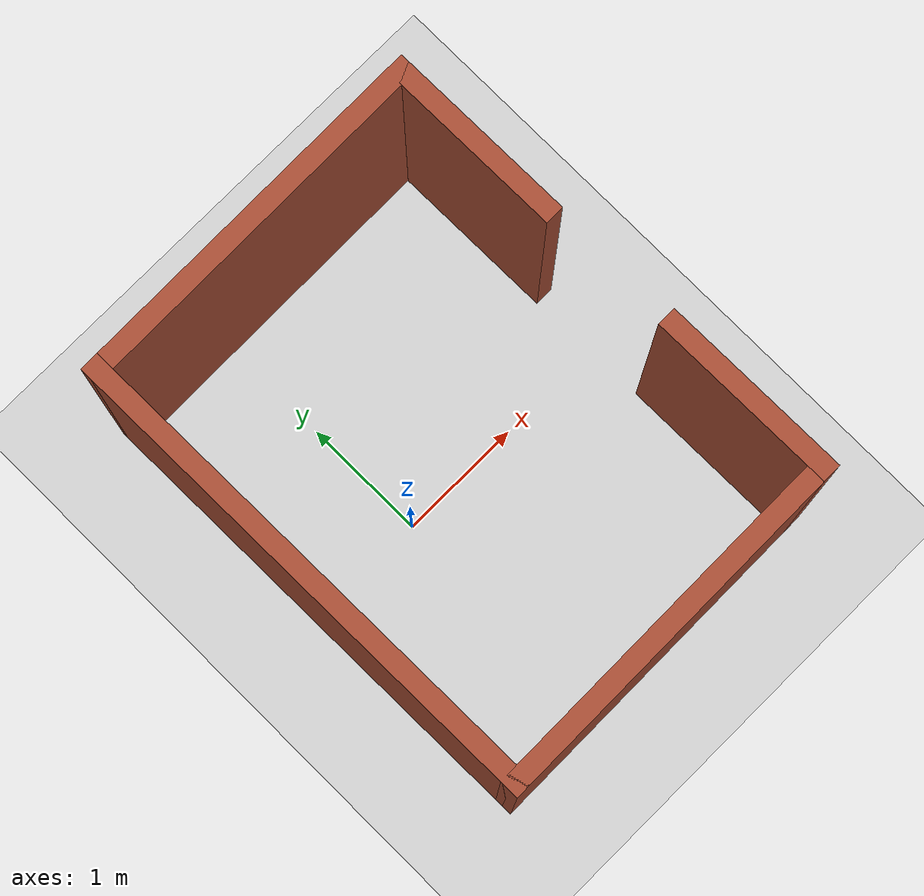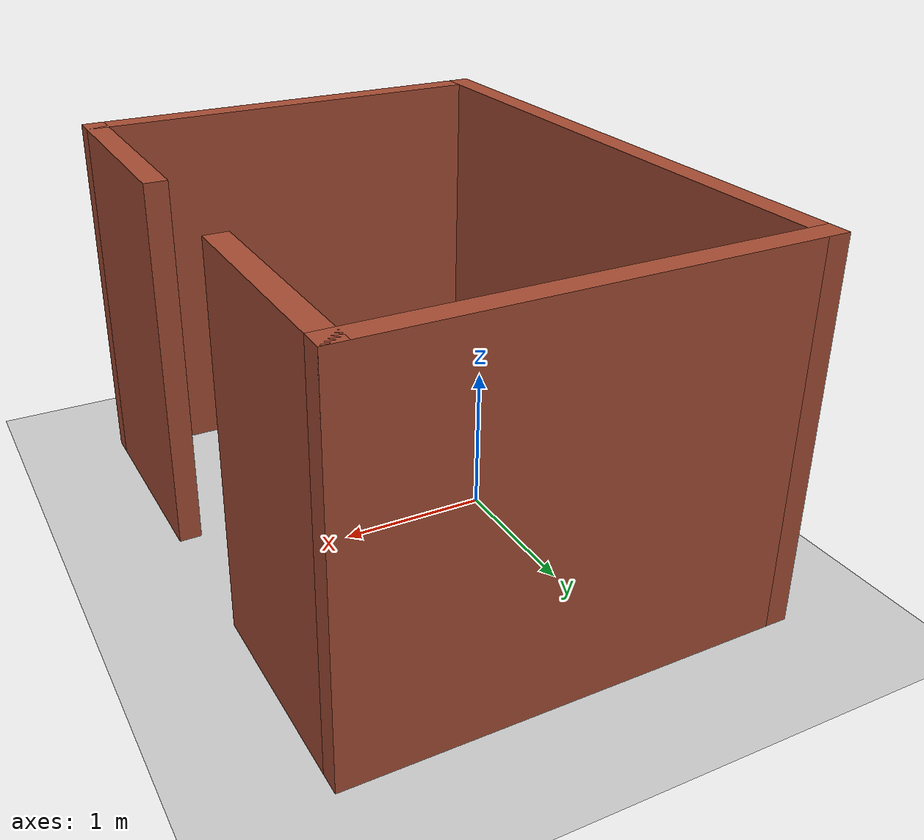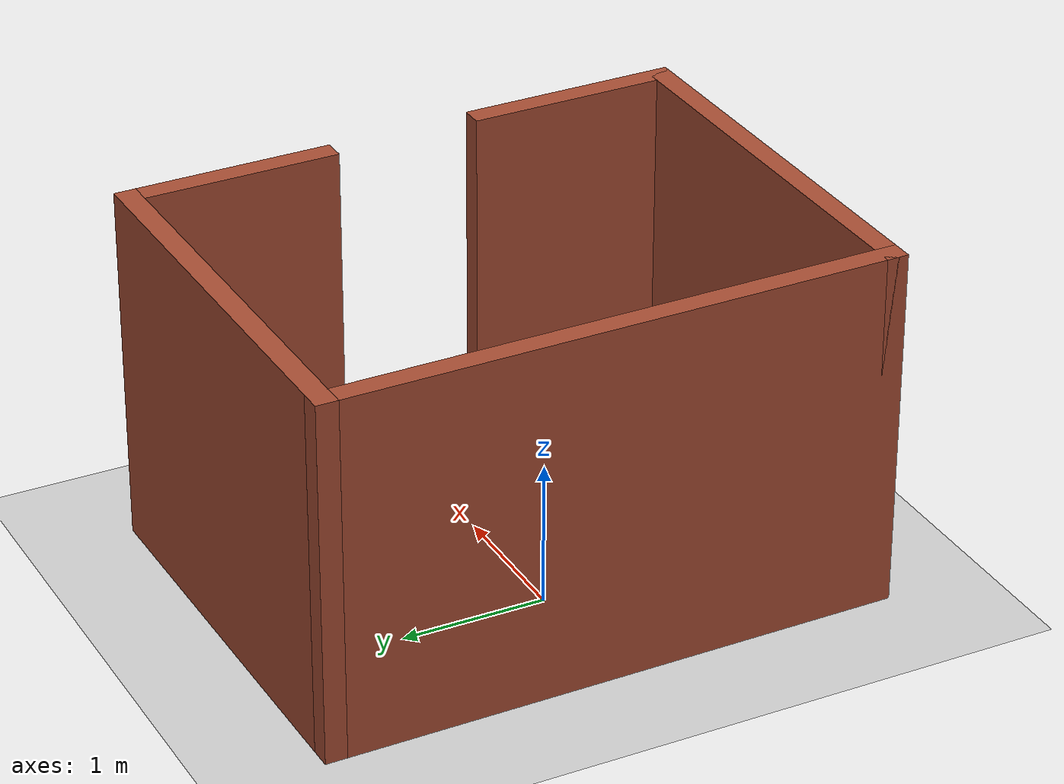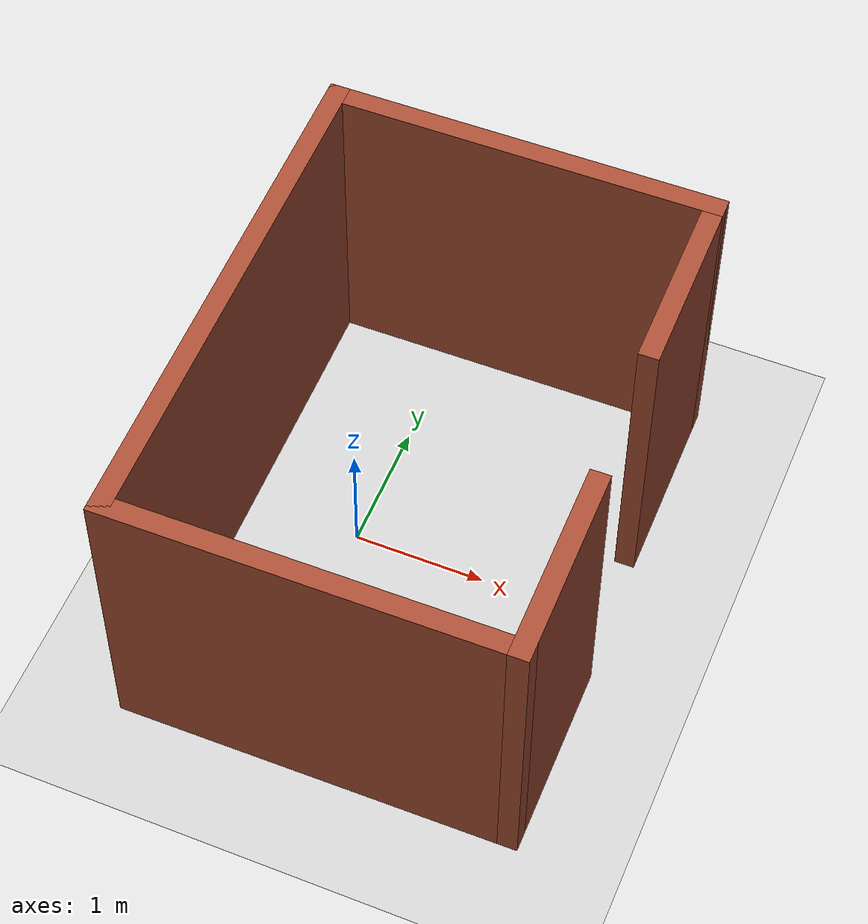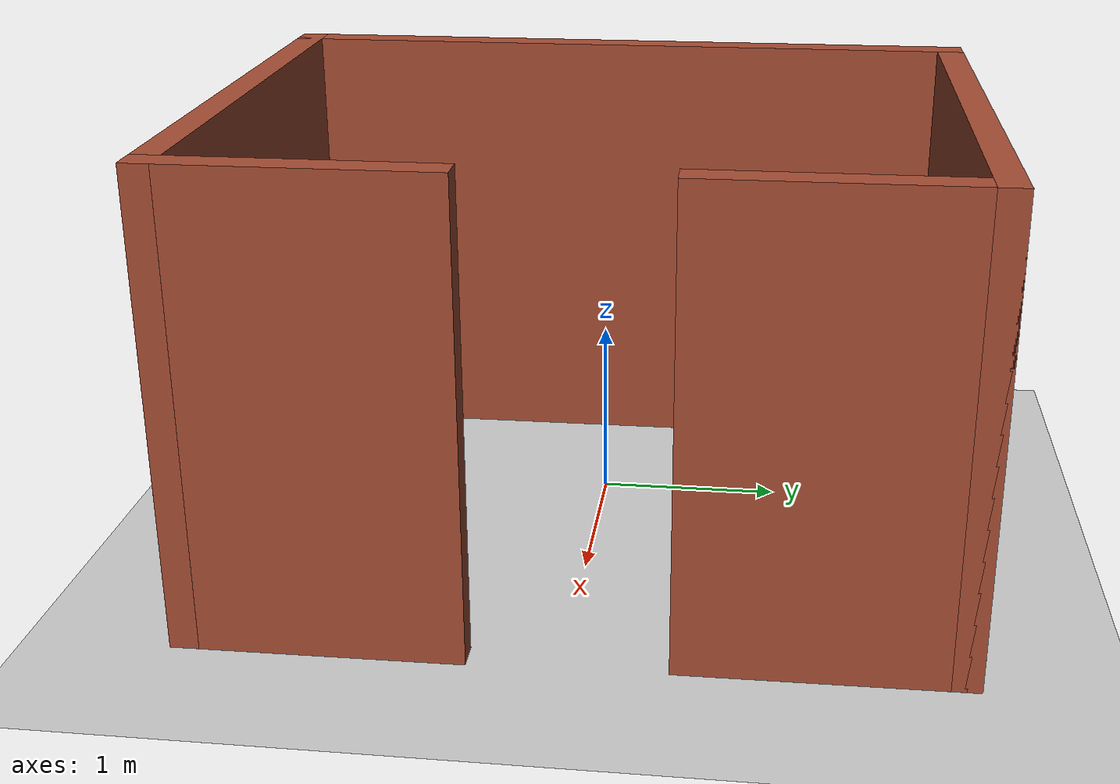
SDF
<sdf version="1.7">
 <world name="default">
  <light name="sun" type="directional">
   <pose>0 0 10 0 -0 0</pose>
   <diffuse>0.8 0.8 0.8 1</diffuse>
   <specular>0.2 0.2 0.2 1</specular>
   <attenuation>
    <range>1000</range>
    <constant>0.9</constant>
    <linear>0.01</linear>
    <quadratic>0.001</quadratic>
   </attenuation>
   <direction>-0.5 0.1 -0.9</direction>
   <spot><inner_angle>0</inner_angle><outer_angle>0</outer_angle><falloff>0</falloff></spot>
  </light>
  <model name="ground_plane">
   <static>1</static>
   <link name="link">
    <collision name="collision">
     <geometry><plane><normal>0 0 1</normal><size>100 100</size></plane></geometry>
     <surface>
      <contact><collide_bitmask>65535</collide_bitmask></contact>
      <friction><ode><mu>100</mu><mu2>50</mu2></ode></friction>
     </surface>
    </collision>
    <visual name="visual">
     <cast_shadows>0</cast_shadows>
     <geometry><plane><normal>0 0 1</normal><size>100 100</size></plane></geometry>
     <material>
      <script><uri>file://media/materials/scripts/gazebo.material</uri><name>Gazebo/Grey</name></script>
     </material>
    </visual>
   </link>
  </model>
  <gravity>0 0 -9.8</gravity>
  <magnetic_field>6e-06 2.3e-05 -4.2e-05</magnetic_field>
  <atmosphere type="adiabatic"/>
  <physics type="ode">
   <max_step_size>0.001</max_step_size>
   <real_time_factor>1</real_time_factor>
   <real_time_update_rate>1000</real_time_update_rate>
  </physics>
  <scene><ambient>0.4 0.4 0.4 1</ambient><background>0.7 0.7 0.7 1</background><shadows>1</shadows></scene>
  <spherical_coordinates>
   <surface_model>EARTH_WGS84</surface_model>
   <latitude_deg>0</latitude_deg>
   <longitude_deg>0</longitude_deg>
   <elevation>0</elevation>
   <heading_deg>0</heading_deg>
  </spherical_coordinates>
  <model name="room_one">
   <pose>0.813268 0.023994 0 0 0 -1.56139</pose>
   <link name="Wall_0">
    <collision name="Wall_0_Collision">
     <geometry><box><size>4 0.15 2.5</size></box></geometry>
     <pose>0 0 1.25 0 -0 0</pose>
    </collision>
    <visual name="Wall_0_Visual">
     <pose>0 0 1.25 0 -0 0</pose>
     <geometry><box><size>4 0.15 2.5</size></box></geometry>
     <material>
      <script><uri>file://media/materials/scripts/gazebo.material</uri><name>Gazebo/Bricks</name></script>
      <ambient>1 1 1 1</ambient>
     </material>
     <meta><layer>0</layer></meta>
    </visual>
    <pose>-0 -1.7375 0 0 -0 0</pose>
   </link>
   <link name="Wall_1">
    <collision name="Wall_1_Collision">
     <geometry><box><size>3.023 0.15 2.5</size></box></geometry>
     <pose>0 0 1.25 0 -0 0</pose>
    </collision>
    <visual name="Wall_1_Visual">
     <pose>0 0 1.25 0 -0 0</pose>
     <geometry><box><size>3.023 0.15 2.5</size></box></geometry>
     <material>
      <script><uri>file://media/materials/scripts/gazebo.material</uri><name>Gazebo/Bricks</name></script>
      <ambient>1 1 1 1</ambient>
     </material>
     <meta><layer>0</layer></meta>
    </visual>
    <pose>1.925 -0.301 0 0 -0 1.5708</pose>
   </link>
   <link name="Wall_4">
    <collision name="Wall_4_Collision">
     <geometry><box><size>3 0.15 2.5</size></box></geometry>
     <pose>0 0 1.25 0 -0 0</pose>
    </collision>
    <visual name="Wall_4_Visual">
     <pose>0 0 1.25 0 -0 0</pose>
     <geometry><box><size>3 0.15 2.5</size></box></geometry>
     <material>
      <script><uri>file://media/materials/scripts/gazebo.material</uri><name>Gazebo/Bricks</name></script>
      <ambient>1 1 1 1</ambient>
     </material>
     <meta><layer>0</layer></meta>
    </visual>
    <pose>-1.925 -0.3125 0 0 -0 1.5708</pose>
   </link>
   <link name="Wall_6">
    <collision name="Wall_6_Collision">
     <geometry><box><size>1.5 0.15 2.5</size></box></geometry>
     <pose>0 0 1.25 0 -0 0</pose>
    </collision>
    <visual name="Wall_6_Visual">
     <pose>0 0 1.25 0 -0 0</pose>
     <geometry><box><size>1.5 0.15 2.5</size></box></geometry>
     <material>
      <script><uri>file://media/materials/scripts/gazebo.material</uri><name>Gazebo/Bricks</name></script>
      <ambient>1 1 1 1</ambient>
     </material>
     <meta><layer>0</layer></meta>
    </visual>
    <pose>-1.25 1.1125 0 0 -0 0</pose>
   </link>
   <link name="Wall_8">
    <collision name="Wall_8_Collision">
     <geometry><box><size>1.5 0.15 2.5</size></box></geometry>
     <pose>0 0 1.25 0 -0 0</pose>
    </collision>
    <visual name="Wall_8_Visual">
     <pose>0 0 1.25 0 -0 0</pose>
     <geometry><box><size>1.5 0.15 2.5</size></box></geometry>
     <material>
      <script><uri>file://media/materials/scripts/gazebo.material</uri><name>Gazebo/Bricks</name></script>
      <ambient>1 1 1 1</ambient>
     </material>
     <meta><layer>0</layer></meta>
    </visual>
    <pose>1.25 1.1355 0 0 -0 3.14159</pose>
   </link>
   <static>1</static>
  </model>
 </world>
</sdf>
